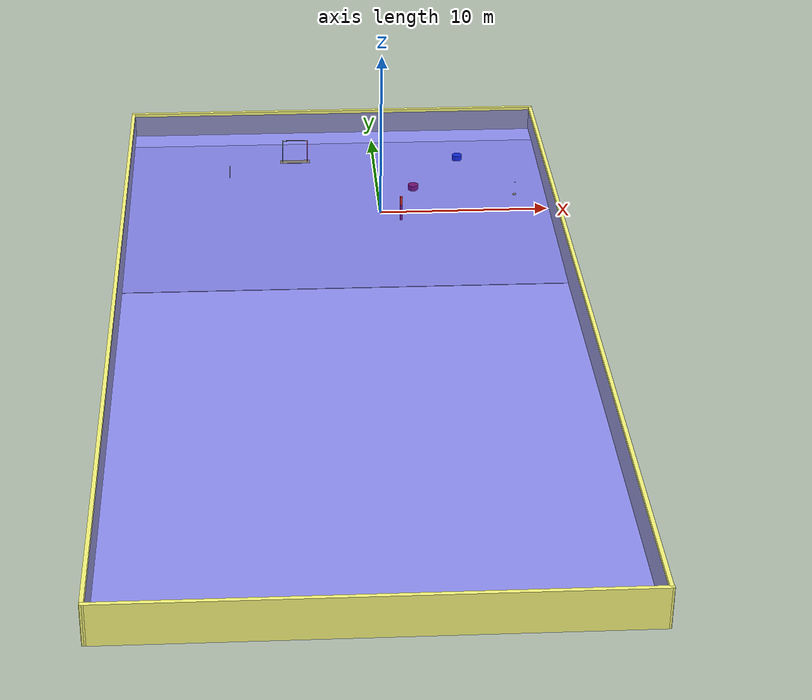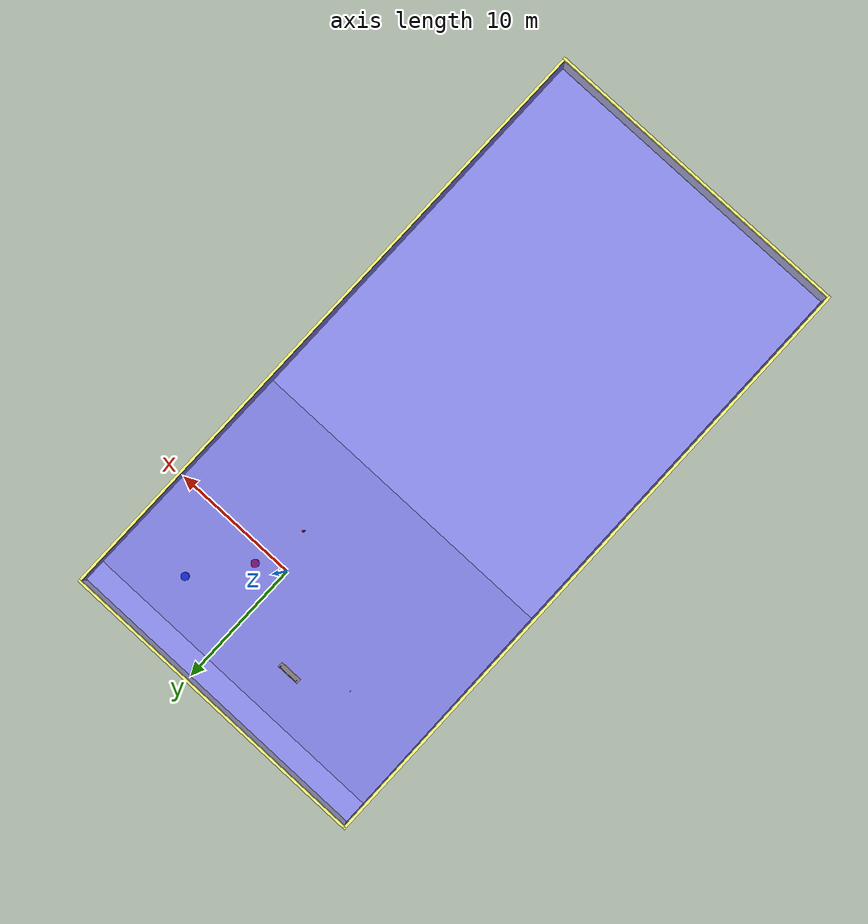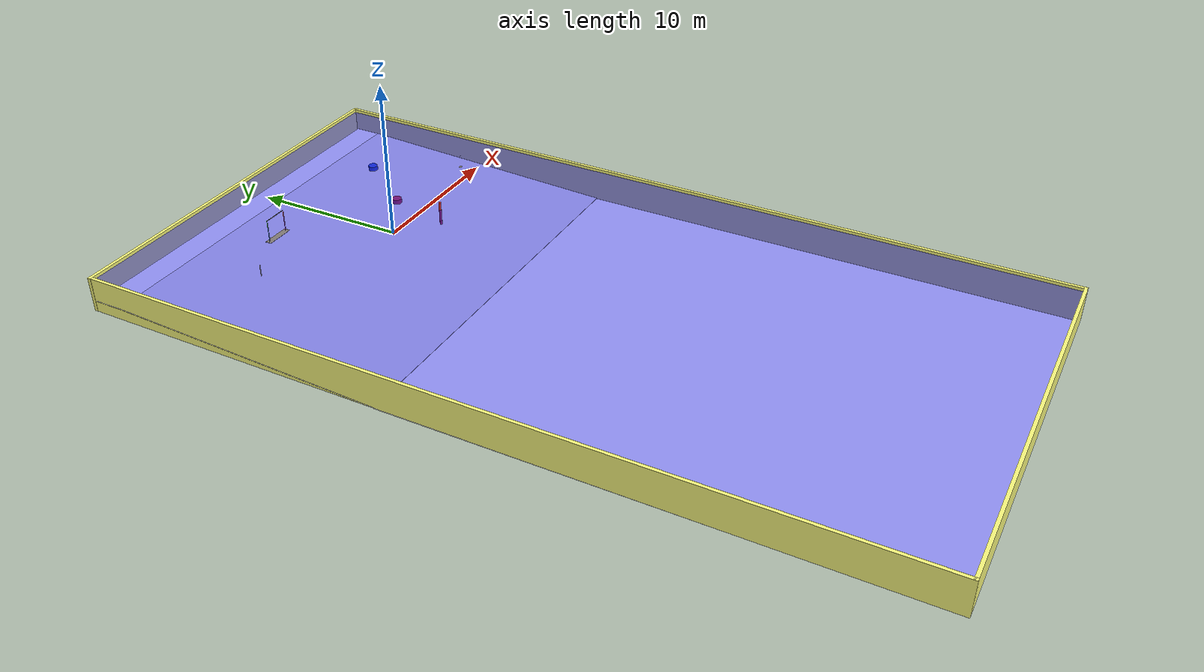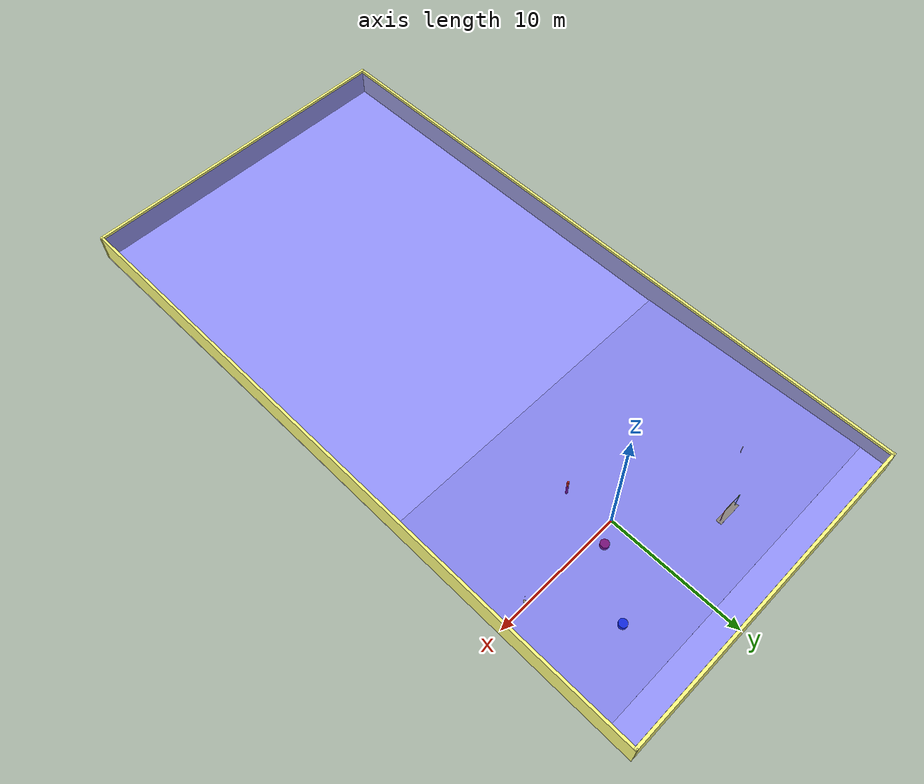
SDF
<sdf version="1.10">
 <world name="pool">
  <scene><grid>false</grid></scene>
  <physics name="1ms" type="ignored">
   <max_step_size>0.001</max_step_size>
   <real_time_factor>1</real_time_factor>
   <real_time_update_rate>1000</real_time_update_rate>
  </physics>
  <plugin name="gz::sim::systems::Physics" filename="gz-sim-physics-system"/>
  <plugin name="gz::sim::systems::UserCommands" filename="gz-sim-user-commands-system"/>
  <plugin name="gz::sim::systems::SceneBroadcaster" filename="gz-sim-scene-broadcaster-system"/>
  <plugin name="gz::sim::systems::Buoyancy" filename="gz-sim-buoyancy-system">
   <uniform_fluid_density>1000</uniform_fluid_density>
  </plugin>
  <gravity>0 0 -9.8</gravity>
  <magnetic_field>6e-06 2.3e-05 -4.2e-05</magnetic_field>
  <atmosphere type="adiabatic"/>
  <light name="sun" type="directional">
   <pose>0 0 10 0 0 0</pose>
   <intensity>1</intensity>
   <direction>-0.5 0.1 -0.9</direction>
  </light>
  <model name="water visual">
   <static>true</static>
   <pose>-2.5 -15 1 0 0 0</pose>
   <link name="link">
    <visual name="visual">
     <geometry><box><size>25 50 2</size></box></geometry>
     <material>
      <ambient>0 0 1 0.2</ambient>
      <diffuse>0 0 1 0.4</diffuse>
      <specular>0.2 0.2 0.2 1.0</specular>
      <emissive>0 0 0 1</emissive>
     </material>
    </visual>
   </link>
  </model>
  <model name="z boundary">
   <static>true</static>
   <pose>0 0 2 0 0 0</pose>
   <link name="link">
    <collision name="collision"><geometry><box><size>1000 1000 0.1</size></box></geometry></collision>
   </link>
  </model>
  <model name="pool wall left">
   <pose>-2.5 10.1 1.1 0 0 0</pose>
   <link name="link">
    <inertial>
     <inertia><ixx>1</ixx><ixy>0</ixy><ixz>0</ixz><iyy>1</iyy><iyz>0</iyz><izz>1</izz></inertia>
     <mass>1</mass>
    </inertial>
    <collision name="collision"><geometry><box><size>25 0.2 2.2</size></box></geometry></collision>
    <visual name="visual">
     <geometry><box><size>25.4 0.2 2.2</size></box></geometry>
     <material><ambient>0 0 0 0</ambient><diffuse>1 1 0.5 1</diffuse><specular>0 0 0 0</specular></material>
    </visual>
   </link>
   <static>true</static>
  </model>
  <model name="pool wall right">
   <pose>-2.5 -40.1 1.1 0 0 0</pose>
   <link name="link">
    <inertial>
     <inertia><ixx>1</ixx><ixy>0</ixy><ixz>0</ixz><iyy>1</iyy><iyz>0</iyz><izz>1</izz></inertia>
     <mass>1</mass>
    </inertial>
    <collision name="collision"><geometry><box><size>25 0.2 2.2</size></box></geometry></collision>
    <visual name="visual">
     <geometry><box><size>25.4 0.2 2.2</size></box></geometry>
     <material><ambient>0 0 0 0</ambient><diffuse>1 1 0.5 1</diffuse><specular>0 0 0 0</specular></material>
    </visual>
   </link>
   <static>true</static>
  </model>
  <model name="pool wall top">
   <pose>10.1 -15 1.1 0 0 1.57</pose>
   <link name="link">
    <inertial>
     <inertia><ixx>1</ixx><ixy>0</ixy><ixz>0</ixz><iyy>1</iyy><iyz>0</iyz><izz>1</izz></inertia>
     <mass>1</mass>
    </inertial>
    <collision name="collision"><geometry><box><size>50 0.2 2.2</size></box></geometry></collision>
    <visual name="visual">
     <geometry><box><size>50.4 0.2 2.2</size></box></geometry>
     <material><ambient>0 0 0 0</ambient><diffuse>1 1 0.5 1</diffuse><specular>0 0 0 0</specular></material>
    </visual>
   </link>
   <static>true</static>
  </model>
  <model name="pool wall bottom">
   <pose>-15.1 -15 1.1 0 0 1.57</pose>
   <link name="link">
    <inertial>
     <inertia><ixx>1</ixx><ixy>0</ixy><ixz>0</ixz><iyy>1</iyy><iyz>0</iyz><izz>1</izz></inertia>
     <mass>1</mass>
    </inertial>
    <collision name="collision"><geometry><box><size>50 0.2 2.2</size></box></geometry></collision>
    <visual name="visual">
     <geometry><box><size>50.4 0.2 2.2</size></box></geometry>
     <material><ambient>0 0 0 0</ambient><diffuse>1 1 0.5 1</diffuse><specular>0 0 0 0</specular></material>
    </visual>
   </link>
   <static>true</static>
  </model>
  <model name="floor shallow">
   <pose>-2.5 9 0.72 0 0 0</pose>
   <link name="link">
    <inertial>
     <inertia><ixx>1</ixx><ixy>0</ixy><ixz>0</ixz><iyy>1</iyy><iyz>0</iyz><izz>1</izz></inertia>
    </inertial>
    <collision name="collision"><geometry><box><size>25 0.01 1.8</size></box></geometry></collision>
    <visual name="visual">
     <geometry><box><size>25.4 0.03 1.8</size></box></geometry>
     <material>
      <ambient>1.0 1.0 1.0 1</ambient>
      <diffuse>1.0 1.0 1.0 1</diffuse>
      <specular>0.6 0.6 0.6 1</specular>
      <emissive>0 0 0 0</emissive>
     </material>
    </visual>
    <pose>0 0 0 1.57 0 0</pose>
   </link>
   <static>true</static>
  </model>
  <model name="floor slanted">
   <pose>-2.5 -0.55 0.375 0.04111 0 0</pose>
   <link name="link">
    <inertial>
     <inertia><ixx>1</ixx><ixy>0</ixy><ixz>0</ixz><iyy>1</iyy><iyz>0</iyz><izz>1</izz></inertia>
    </inertial>
    <collision name="collision"><geometry><box><size>25 0.01 17.515</size></box></geometry></collision>
    <visual name="visual">
     <geometry><box><size>25.4 0.03 17.515</size></box></geometry>
     <material>
      <ambient>0.95 0.95 0.95 1</ambient>
      <diffuse>0.9 0.9 0.9 1</diffuse>
      <specular>0.3 0.3 0.3 1</specular>
      <emissive>0 0 0 0</emissive>
     </material>
    </visual>
    <pose>0 0 0 1.57 0 0</pose>
   </link>
   <static>true</static>
  </model>
  <model name="floor deep">
   <pose>-2.5 -24.638 0 0 0 0</pose>
   <link name="link">
    <inertial>
     <inertia><ixx>1</ixx><ixy>0</ixy><ixz>0</ixz><iyy>1</iyy><iyz>0</iyz><izz>1</izz></inertia>
    </inertial>
    <collision name="collision"><geometry><box><size>25 0.01 30.7</size></box></geometry></collision>
    <visual name="visual">
     <geometry><box><size>25.4 0.03 30.7</size></box></geometry>
     <material>
      <ambient>1.0 1.0 1.0 1</ambient>
      <diffuse>1.0 1.0 1.0 1</diffuse>
      <specular>0.6 0.6 0.6 1</specular>
      <emissive>0 0 0 0</emissive>
     </material>
    </visual>
    <pose>0 0 0 1.57 0 0</pose>
   </link>
   <static>true</static>
  </model>
  <model name="blue_drum">
   <static>true</static>
   <link name="link">
    <collision name="drum">
     <pose>5 5 1.15 0 0 0</pose>
     <geometry><cylinder><radius>0.3</radius><length>0.3</length></cylinder></geometry>
    </collision>
    <visual name="drum">
     <cast_shadows>false</cast_shadows>
     <pose>5 5 1.15 0 0 0</pose>
     <geometry><cylinder><radius>0.3</radius><length>0.3</length></cylinder></geometry>
     <material>
      <script><uri>media/materials/scripts/colors.material</uri><name>SAUVC/Blue</name></script>
     </material>
    </visual>
   </link>
  </model>
  <model name="gate">
   <static>true</static>
   <link name="link">
    <collision name="left">
     <pose>-4.25 5 1.75 0 0 0</pose>
     <geometry><cylinder><radius>0.02</radius><length>1.5</length></cylinder></geometry>
    </collision>
    <collision name="right">
     <pose>-5.75 5 1.75 0 0 0</pose>
     <geometry><cylinder><radius>0.02</radius><length>1.5</length></cylinder></geometry>
    </collision>
    <collision name="top">
     <pose>-5 5 2.48 0 1.57 0</pose>
     <geometry><cylinder><radius>0.02</radius><length>1.5</length></cylinder></geometry>
    </collision>
    <visual name="left">
     <cast_shadows>false</cast_shadows>
     <pose>-4.25 5 1.75 0 0 0</pose>
     <geometry><cylinder><radius>0.02</radius><length>1.5</length></cylinder></geometry>
     <material><script><uri>media/materials/scripts/colors.material</uri><name>SAUVC/Red</name></script></material>
    </visual>
    <visual name="right">
     <cast_shadows>false</cast_shadows>
     <pose>-5.75 5 1.75 0 0 0</pose>
     <geometry><cylinder><radius>0.02</radius><length>1.5</length></cylinder></geometry>
     <material>
      <script><uri>media/materials/scripts/colors.material</uri><name>SAUVC/Green</name></script>
     </material>
    </visual>
    <visual name="top">
     <cast_shadows>false</cast_shadows>
     <pose>-5 5 2.48 0 1.57 0</pose>
     <geometry><cylinder><radius>0.02</radius><length>1.5</length></cylinder></geometry>
     <material>
      <script><uri>media/materials/scripts/colors.material</uri><name>SAUVC/Black</name></script>
     </material>
    </visual>
    <visual name="bottom">
     <cast_shadows>false</cast_shadows>
     <pose>-5 5 1.05 0 0 0</pose>
     <geometry><box><size>1.8 .4 .02</size></box></geometry>
     <material>
      <script><uri>media/materials/scripts/colors.material</uri><name>SAUVC/Yellow</name></script>
     </material>
    </visual>
   </link>
  </model>
  <model name="red_drum">
   <static>true</static>
   <link name="link">
    <collision name="drum">
     <pose>2 1 1.15 0 0 0</pose>
     <geometry><cylinder><radius>0.3</radius><length>0.3</length></cylinder></geometry>
    </collision>
    <visual name="drum">
     <cast_shadows>false</cast_shadows>
     <pose>2 1 1.15 0 0 0</pose>
     <geometry><cylinder><radius>0.3</radius><length>0.3</length></cylinder></geometry>
     <material><script><uri>media/materials/scripts/colors.material</uri><name>SAUVC/Red</name></script></material>
    </visual>
   </link>
  </model>
  <model name="red_flare">
   <static>false</static>
   <link name="link">
    <collision name="flare">
     <pose>1 -3 1.75 0 0 0</pose>
     <geometry><cylinder><radius>0.075</radius><length>1.5</length></cylinder></geometry>
    </collision>
    <visual name="flare">
     <cast_shadows>false</cast_shadows>
     <pose>1 -3 1.75 0 0 0</pose>
     <geometry><cylinder><radius>0.075</radius><length>1.5</length></cylinder></geometry>
     <material><script><uri>media/materials/scripts/colors.material</uri><name>SAUVC/Red</name></script></material>
    </visual>
   </link>
  </model>
  <model name="yellow_flare">
   <static>false</static>
   <link name="link">
    <collision name="flare">
     <pose>-9 3 1.4 0 0 0</pose>
     <geometry><cylinder><radius>0.02</radius><length>0.8</length></cylinder></geometry>
    </collision>
    <visual name="flare">
     <cast_shadows>false</cast_shadows>
     <pose>-9 3 1.4 0 0 0</pose>
     <geometry><cylinder><radius>0.02</radius><length>0.8</length></cylinder></geometry>
     <material>
      <script><uri>media/materials/scripts/colors.material</uri><name>SAUVC/Yellow</name></script>
     </material>
    </visual>
    <visual name="ball">
     <cast_shadows>false</cast_shadows>
     <pose>8 0 1.82 0 0 0</pose>
     <geometry><sphere><radius>0.03</radius></sphere></geometry>
     <material>
      <script><uri>media/materials/scripts/colors.material</uri><name>SAUVC/White</name></script>
     </material>
    </visual>
    <visual name="stand">
     <cast_shadows>false</cast_shadows>
     <pose>8 0 1.01 0 0 0</pose>
     <geometry><cylinder><radius>0.1</radius><length>0.02</length></cylinder></geometry>
     <material>
      <script><uri>media/materials/scripts/colors.material</uri><name>SAUVC/Yellow</name></script>
     </material>
    </visual>
   </link>
  </model>
 </world>
</sdf>
